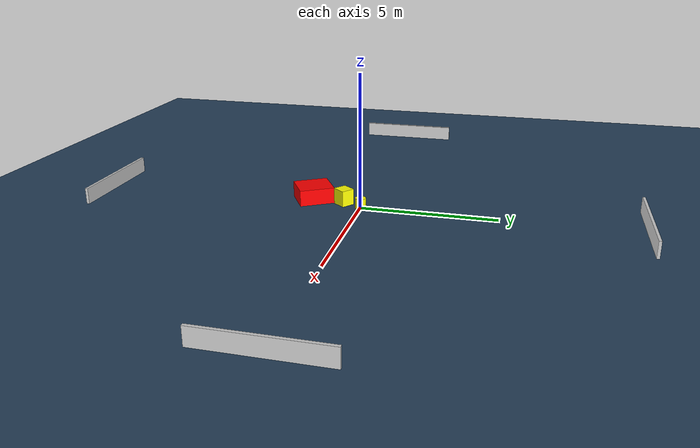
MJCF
<?xml version="1.0" ?>
<mujoco model="generated_environment">
  <option timestep="0.01" integrator="RK4" cone="elliptic"/>
  <default>
    <geom density="1"/>
  </default>
  <asset>
    <texture builtin="gradient" height="3072" name="skybox" rgb1="0.3 0.5 0.7" rgb2="0 0 0" type="skybox" width="512"/>
    <texture builtin="checker" height="300" name="groundplane" rgb1="0.2 0.3 0.4" rgb2="0.1 0.2 0.3" type="2d" width="300"/>
    <material name="groundplane" reflectance="0.2" texrepeat="5 5" texture="groundplane"/>
  </asset>
  <worldbody>
    <light dir="0 0 -1" directional="true" pos="0 0 1.5"/>
    <geom condim="3" friction="0.5 0.005 0.001" material="groundplane" name="floor" pos="0 0 0" size="0 0 0.05" type="plane"/>
    <body name="walls">
      <geom name="wall_1" condim="4" pos="-10.0 0.0 0.3" rgba="0.800000011920929 0.800000011920929 0.800000011920929 1.0" size="0.05 2.0 0.3" type="box"/>
      <geom name="wall_2" condim="4" pos="10.0 0.0 0.3" rgba="0.800000011920929 0.800000011920929 0.800000011920929 1.0" size="0.05 2.0 0.3" type="box"/>
      <geom name="wall_3" condim="4" pos="0.0 -10.0 0.3" rgba="0.800000011920929 0.800000011920929 0.800000011920929 1.0" size="2.0 0.05 0.3" type="box"/>
      <geom name="wall_4" condim="4" pos="0.0 10.0 0.3" rgba="0.800000011920929 0.800000011920929 0.800000011920929 1.0" size="2.0 0.05 0.3" type="box"/>
    </body>
    <body name="robot">
      <joint name="joint_x" type="slide" pos="0 0 0" axis="1 0 0"/>
      <joint name="joint_y" type="slide" pos="0 0 0" axis="0 1 0"/>
      <geom name="robot" type="cylinder" pos="0.0 0.0 0.2" size="0.2 0.2 0.0" mass="5.0" friction="1.0 0.005 0.0001" condim="4" rgba="1.0 1.0 0.0 1.0"/>
    </body>
    <body name="obstacle_1_movable">
      <geom name="obstacle_1_movable" condim="4" pos="-0.28503691825981087 -0.7090279288518369 0.3" euler="0 0 141.97849160191558" friction="0.0 0.005 0.001" rgba="1.0 1.0 0.0 1.0" size="0.2517325816655067 0.2632250460749662 0.3" type="box" mass="0.1"/>
      <joint type="free"/>
    </body>
    <body name="obstacle_2_static">
      <geom name="obstacle_2_static" condim="4" pos="-0.45735876497885647 -1.9327763494109316 0.3" euler="0 0 30.571351970996904" friction="0.0 0.005 0.001" rgba="1.0 0.0 0.0 1.0" size="0.5931334363703469 0.6505617131001695 0.3" type="box"/>
    </body>
  </worldbody>
  <actuator>
    <motor name="actuator_x" joint="joint_x" gear="1" ctrlrange="-1 1"/>
    <motor name="actuator_y" joint="joint_y" gear="1" ctrlrange="-1 1"/>
  </actuator>
</mujoco>
